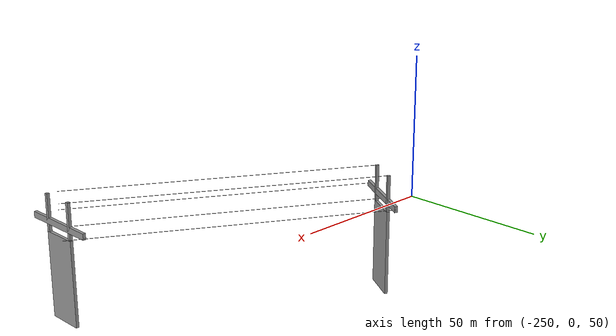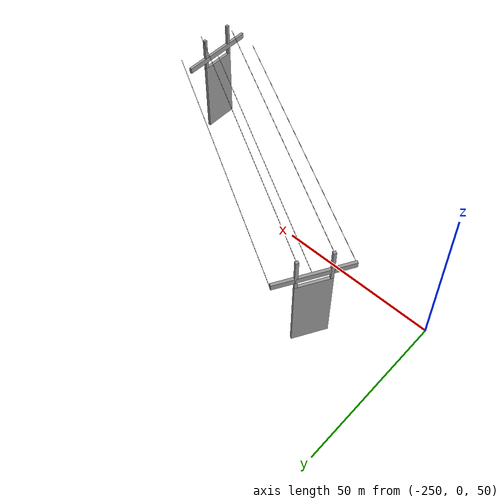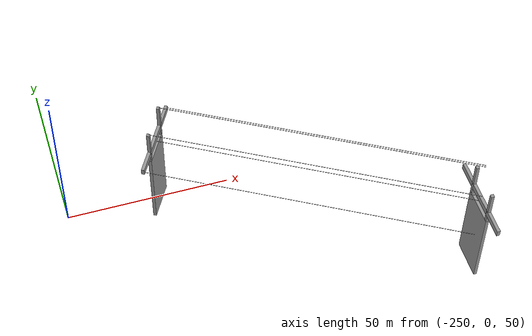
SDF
<sdf version="1.6">
 <world name="vrc_task_1">
  <model name="v4uav_simple_circuit_tower_5">
   <link name="link">
    <inertial>
     <mass>1</mass>
     <inertia>
      <ixx>0.166667</ixx>
      <ixy>0</ixy>
      <ixz>0</ixz>
      <iyy>0.166667</iyy>
      <iyz>0</iyz>
      <izz>0.166667</izz>
     </inertia>
    </inertial>
    <pose>0 0 14 0 -0 0</pose>
    <visual name="ModelPreview_4::link::visual_3">
     <geometry><box><size>1 1 12</size></box></geometry>
     <material>
      <script><name>Gazebo/Grey</name><uri>file://media/materials/scripts/gazebo.material</uri></script>
      <shader type="pixel"><normal_map>__default__</normal_map></shader>
      <ambient>0.3 0.3 0.3 1</ambient>
      <diffuse>0.7 0.7 0.7 1</diffuse>
      <specular>0.01 0.01 0.01 1</specular>
      <emissive>0 0 0 1</emissive>
     </material>
     <pose>0 -5.5 20 0 -0 0</pose>
    </visual>
    <visual name="ModelPreview_4::link::visual_1">
     <geometry><box><size>1 26.2 2</size></box></geometry>
     <material>
      <script><name>Gazebo/Grey</name><uri>file://media/materials/scripts/gazebo.material</uri></script>
      <shader type="pixel"><normal_map>__default__</normal_map></shader>
      <ambient>0.3 0.3 0.3 1</ambient>
      <diffuse>0.7 0.7 0.7 1</diffuse>
      <specular>0.01 0.01 0.01 1</specular>
      <emissive>0 0 0 1</emissive>
     </material>
     <pose>0 0 17.42 0 -0 0</pose>
    </visual>
    <visual name="ModelPreview_4::link::visual_2">
     <geometry><box><size>1 1 12</size></box></geometry>
     <material>
      <script><name>Gazebo/Grey</name><uri>file://media/materials/scripts/gazebo.material</uri></script>
      <shader type="pixel"><normal_map>__default__</normal_map></shader>
      <ambient>0.3 0.3 0.3 1</ambient>
      <diffuse>0.7 0.7 0.7 1</diffuse>
      <specular>0.01 0.01 0.01 1</specular>
      <emissive>0 0 0 1</emissive>
     </material>
     <pose>0 5.5 20 0 -0 0</pose>
    </visual>
    <visual name="visual">
     <geometry><box><size>1 12 28</size></box></geometry>
     <material>
      <script><name>Gazebo/Grey</name><uri>file://media/materials/scripts/gazebo.material</uri></script>
      <shader type="pixel"><normal_map>__default__</normal_map></shader>
      <ambient>0.3 0.3 0.3 1</ambient>
      <diffuse>0.7 0.7 0.7 1</diffuse>
      <specular>0.01 0.01 0.01 1</specular>
      <emissive>0 0 0 1</emissive>
     </material>
    </visual>
    <collision name="collision">
     <geometry><box><size>1 1 1</size></box></geometry>
     <surface>
      <friction>
       <ode><mu>1</mu><mu2>1</mu2><fdir1>0 0 0</fdir1><slip1>0</slip1><slip2>0</slip2></ode>
       <torsional>
        <coefficient>1</coefficient>
        <patch_radius>0</patch_radius>
        <surface_radius>0</surface_radius>
        <use_patch_radius>1</use_patch_radius>
        <ode><slip>0</slip></ode>
       </torsional>
      </friction>
      <bounce><restitution_coefficient>0</restitution_coefficient><threshold>1e+06</threshold></bounce>
      <contact>
       <collide_without_contact>0</collide_without_contact>
       <collide_without_contact_bitmask>1</collide_without_contact_bitmask>
       <collide_bitmask>1</collide_bitmask>
       <ode>
        <soft_cfm>0</soft_cfm>
        <soft_erp>0.2</soft_erp>
        <kp>1e+13</kp>
        <kd>1</kd>
        <max_vel>0.01</max_vel>
        <min_depth>0</min_depth>
       </ode>
       <bullet>
        <split_impulse>1</split_impulse>
        <split_impulse_penetration_threshold>-0.01</split_impulse_penetration_threshold>
        <soft_cfm>0</soft_cfm>
        <soft_erp>0.2</soft_erp>
        <kp>1e+13</kp>
        <kd>1</kd>
       </bullet>
      </contact>
     </surface>
    </collision>
   </link>
   <static>1</static>
   <pose>-132 -37 30 0 -0 0</pose>
  </model>
  <model name="v4uav_simple_circuit_tower_7">
   <link name="link">
    <inertial>
     <mass>1</mass>
     <inertia>
      <ixx>0.166667</ixx>
      <ixy>0</ixy>
      <ixz>0</ixz>
      <iyy>0.166667</iyy>
      <iyz>0</iyz>
      <izz>0.166667</izz>
     </inertia>
    </inertial>
    <pose>0 0 14 0 -0 0</pose>
    <visual name="ModelPreview_4::link::visual_3">
     <geometry><box><size>1 1 12</size></box></geometry>
     <material>
      <script><name>Gazebo/Grey</name><uri>file://media/materials/scripts/gazebo.material</uri></script>
      <shader type="pixel"><normal_map>__default__</normal_map></shader>
      <ambient>0.3 0.3 0.3 1</ambient>
      <diffuse>0.7 0.7 0.7 1</diffuse>
      <specular>0.01 0.01 0.01 1</specular>
      <emissive>0 0 0 1</emissive>
     </material>
     <pose>0 -5.5 20 0 -0 0</pose>
    </visual>
    <visual name="ModelPreview_4::link::visual_1">
     <geometry><box><size>1 26.2 2</size></box></geometry>
     <material>
      <script><name>Gazebo/Grey</name><uri>file://media/materials/scripts/gazebo.material</uri></script>
      <shader type="pixel"><normal_map>__default__</normal_map></shader>
      <ambient>0.3 0.3 0.3 1</ambient>
      <diffuse>0.7 0.7 0.7 1</diffuse>
      <specular>0.01 0.01 0.01 1</specular>
      <emissive>0 0 0 1</emissive>
     </material>
     <pose>0 0 17.42 0 -0 0</pose>
    </visual>
    <visual name="ModelPreview_4::link::visual_2">
     <geometry><box><size>1 1 12</size></box></geometry>
     <material>
      <script><name>Gazebo/Grey</name><uri>file://media/materials/scripts/gazebo.material</uri></script>
      <shader type="pixel"><normal_map>__default__</normal_map></shader>
      <ambient>0.3 0.3 0.3 1</ambient>
      <diffuse>0.7 0.7 0.7 1</diffuse>
      <specular>0.01 0.01 0.01 1</specular>
      <emissive>0 0 0 1</emissive>
     </material>
     <pose>0 5.5 20 0 -0 0</pose>
    </visual>
    <visual name="visual">
     <geometry><box><size>1 12 28</size></box></geometry>
     <material>
      <script><name>Gazebo/Grey</name><uri>file://media/materials/scripts/gazebo.material</uri></script>
      <shader type="pixel"><normal_map>__default__</normal_map></shader>
      <ambient>0.3 0.3 0.3 1</ambient>
      <diffuse>0.7 0.7 0.7 1</diffuse>
      <specular>0.01 0.01 0.01 1</specular>
      <emissive>0 0 0 1</emissive>
     </material>
    </visual>
    <collision name="collision">
     <geometry><box><size>1 1 1</size></box></geometry>
     <surface>
      <friction>
       <ode><mu>1</mu><mu2>1</mu2><fdir1>0 0 0</fdir1><slip1>0</slip1><slip2>0</slip2></ode>
       <torsional>
        <coefficient>1</coefficient>
        <patch_radius>0</patch_radius>
        <surface_radius>0</surface_radius>
        <use_patch_radius>1</use_patch_radius>
        <ode><slip>0</slip></ode>
       </torsional>
      </friction>
      <bounce><restitution_coefficient>0</restitution_coefficient><threshold>1e+06</threshold></bounce>
      <contact>
       <collide_without_contact>0</collide_without_contact>
       <collide_without_contact_bitmask>1</collide_without_contact_bitmask>
       <collide_bitmask>1</collide_bitmask>
       <ode>
        <soft_cfm>0</soft_cfm>
        <soft_erp>0.2</soft_erp>
        <kp>1e+13</kp>
        <kd>1</kd>
        <max_vel>0.01</max_vel>
        <min_depth>0</min_depth>
       </ode>
       <bullet>
        <split_impulse>1</split_impulse>
        <split_impulse_penetration_threshold>-0.01</split_impulse_penetration_threshold>
        <soft_cfm>0</soft_cfm>
        <soft_erp>0.2</soft_erp>
        <kp>1e+13</kp>
        <kd>1</kd>
       </bullet>
      </contact>
     </surface>
    </collision>
   </link>
   <static>1</static>
   <pose>-219 13 30 0 0 -0.523601</pose>
  </model>
  <model name="v4uav_simple_circuit_line_3">
   <link name="link">
    <pose>0 0 0 1.5708 -0 0</pose>
    <inertial>
     <mass>1</mass>
     <pose>0 0 0 1.5708 -0 0</pose>
     <inertia><ixx>1</ixx><ixy>0</ixy><ixz>0</ixz><iyy>1</iyy><iyz>0</iyz><izz>1</izz></inertia>
    </inertial>
    <visual name="ModelPreview_1::link::visual_1">
     <cast_shadows>0</cast_shadows>
     <geometry><cylinder><radius>0.05</radius><length>100</length></cylinder></geometry>
     <material>
      <shader type="pixel"><normal_map>__default__</normal_map></shader>
      <script><name>ModelPreview_33::link::visual_MATERIAL_</name><uri>__default__</uri></script>
      <ambient>0 0 0 1</ambient>
      <diffuse>0 0 0 1</diffuse>
      <specular>0 0 0 1</specular>
      <emissive>0 0 0 1</emissive>
     </material>
     <pose>-5.5 40 0 0 -0 0</pose>
    </visual>
    <visual name="visual">
     <cast_shadows>0</cast_shadows>
     <geometry><cylinder><radius>0.05</radius><length>100</length></cylinder></geometry>
     <material>
      <shader type="pixel"><normal_map>__default__</normal_map></shader>
      <script><name>ModelPreview_33::link::visual_MATERIAL_</name><uri>__default__</uri></script>
      <ambient>0 0 0 1</ambient>
      <diffuse>0 0 0 1</diffuse>
      <specular>0 0 0 1</specular>
      <emissive>0 0 0 1</emissive>
     </material>
     <pose>5.5 40 0 0 -0 0</pose>
    </visual>
    <visual name="ModelPreview_1::link::visual_4">
     <cast_shadows>0</cast_shadows>
     <geometry><cylinder><radius>0.05</radius><length>100</length></cylinder></geometry>
     <material>
      <shader type="pixel"><normal_map>__default__</normal_map></shader>
      <script><name>ModelPreview_33::link::visual_MATERIAL_</name><uri>__default__</uri></script>
      <ambient>0 0 0 1</ambient>
      <diffuse>0 0 0 1</diffuse>
      <specular>0 0 0 1</specular>
      <emissive>0 0 0 1</emissive>
     </material>
     <pose>0 30.64 0 0 -0 0</pose>
    </visual>
    <visual name="ModelPreview_1::link::visual_3">
     <cast_shadows>0</cast_shadows>
     <geometry><cylinder><radius>0.05</radius><length>100</length></cylinder></geometry>
     <material>
      <shader type="pixel"><normal_map>__default__</normal_map></shader>
      <script><name>ModelPreview_33::link::visual_MATERIAL_</name><uri>__default__</uri></script>
      <ambient>0 0 0 1</ambient>
      <diffuse>0 0 0 1</diffuse>
      <specular>0 0 0 1</specular>
      <emissive>0 0 0 1</emissive>
     </material>
     <pose>-13.1 31.42 0 0 -0 0</pose>
    </visual>
    <visual name="ModelPreview_1::link::visual_2">
     <cast_shadows>0</cast_shadows>
     <geometry><cylinder><radius>0.05</radius><length>100</length></cylinder></geometry>
     <material>
      <shader type="pixel"><normal_map>__default__</normal_map></shader>
      <script><name>ModelPreview_33::link::visual_MATERIAL_</name><uri>__default__</uri></script>
      <ambient>0 0 0 1</ambient>
      <diffuse>0 0 0 1</diffuse>
      <specular>0 0 0 1</specular>
      <emissive>0 0 0 1</emissive>
     </material>
     <pose>13.1 31.42 0 0 -0 0</pose>
    </visual>
   </link>
   <static>1</static>
   <pose>-175.5 -12 30 0 -0 1.0472</pose>
  </model>
 </world>
</sdf>
